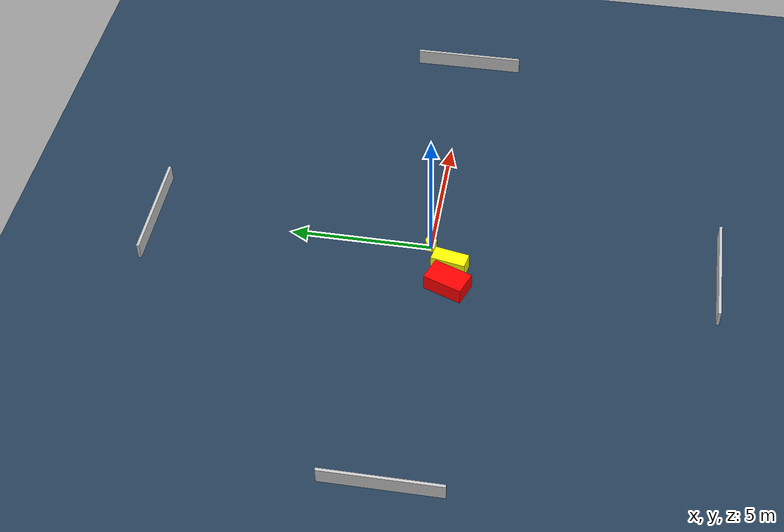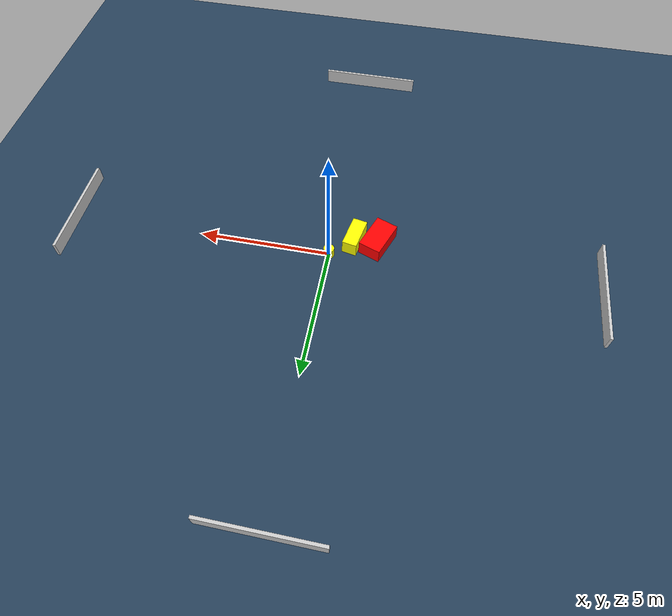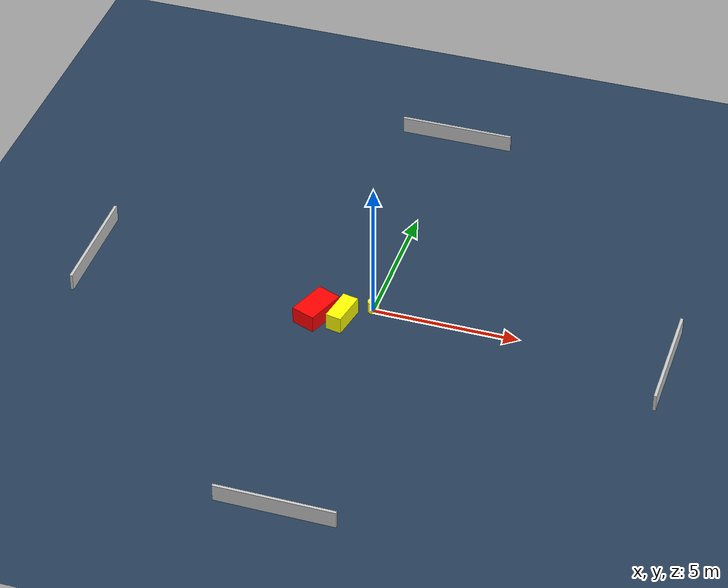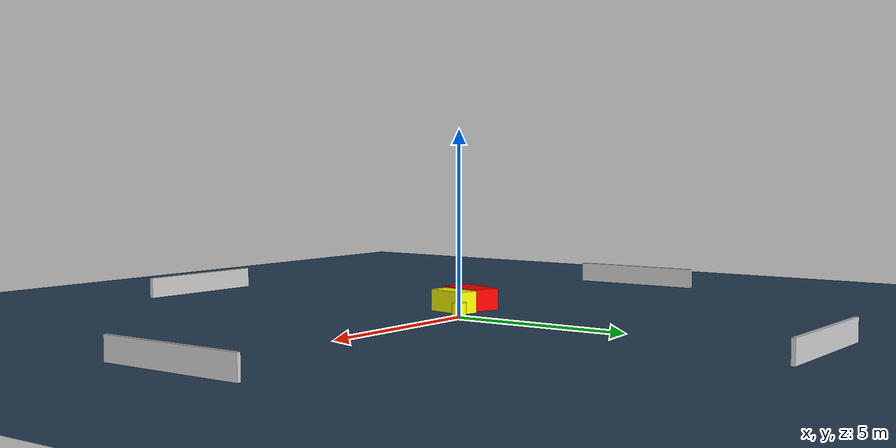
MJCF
<?xml version="1.0" ?>
<mujoco model="generated_environment">
  <option timestep="0.01" integrator="RK4" cone="elliptic"/>
  <default>
    <geom density="1"/>
  </default>
  <asset>
    <texture builtin="gradient" height="3072" name="skybox" rgb1="0.3 0.5 0.7" rgb2="0 0 0" type="skybox" width="512"/>
    <texture builtin="checker" height="300" name="groundplane" rgb1="0.2 0.3 0.4" rgb2="0.1 0.2 0.3" type="2d" width="300"/>
    <material name="groundplane" reflectance="0.2" texrepeat="5 5" texture="groundplane"/>
  </asset>
  <worldbody>
    <light dir="0 0 -1" directional="true" pos="0 0 1.5"/>
    <geom condim="3" friction="0.5 0.005 0.001" material="groundplane" name="floor" pos="0 0 0" size="0 0 0.05" type="plane"/>
    <body name="walls">
      <geom name="wall_1" condim="4" pos="-10.0 0.0 0.3" rgba="0.800000011920929 0.800000011920929 0.800000011920929 1.0" size="0.05 2.0 0.3" type="box"/>
      <geom name="wall_2" condim="4" pos="10.0 0.0 0.3" rgba="0.800000011920929 0.800000011920929 0.800000011920929 1.0" size="0.05 2.0 0.3" type="box"/>
      <geom name="wall_3" condim="4" pos="0.0 -10.0 0.3" rgba="0.800000011920929 0.800000011920929 0.800000011920929 1.0" size="2.0 0.05 0.3" type="box"/>
      <geom name="wall_4" condim="4" pos="0.0 10.0 0.3" rgba="0.800000011920929 0.800000011920929 0.800000011920929 1.0" size="2.0 0.05 0.3" type="box"/>
    </body>
    <body name="robot">
      <joint name="joint_x" type="slide" pos="0 0 0" axis="1 0 0"/>
      <joint name="joint_y" type="slide" pos="0 0 0" axis="0 1 0"/>
      <geom name="robot" type="cylinder" pos="0.0 0.0 0.2" size="0.2 0.2 0.0" mass="5.0" friction="1.0 0.005 0.0001" condim="4" rgba="1.0 1.0 0.0 1.0"/>
    </body>
    <body name="obstacle_1_movable">
      <geom name="obstacle_1_movable" condim="4" pos="-0.8422127795333169 -0.7864472305066165 0.3" euler="0 0 349.20607662206993" friction="0.0 0.005 0.001" rgba="1.0 1.0 0.0 1.0" size="0.2760418256167942 0.6114078170889097 0.3" type="box" mass="0.1"/>
      <joint type="free"/>
    </body>
    <body name="obstacle_2_static">
      <geom name="obstacle_2_static" condim="4" pos="-1.727758488933852 -0.8323367604017926 0.3" euler="0 0 249.2385136128008" friction="0.0 0.005 0.001" rgba="1.0 0.0 0.0 1.0" size="0.7090266756922452 0.42585424864728233 0.3" type="box"/>
    </body>
  </worldbody>
  <actuator>
    <motor name="actuator_x" joint="joint_x" gear="1" ctrlrange="-1 1"/>
    <motor name="actuator_y" joint="joint_y" gear="1" ctrlrange="-1 1"/>
  </actuator>
</mujoco>
